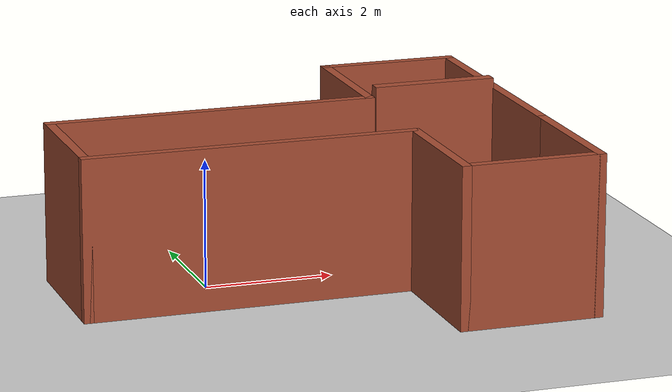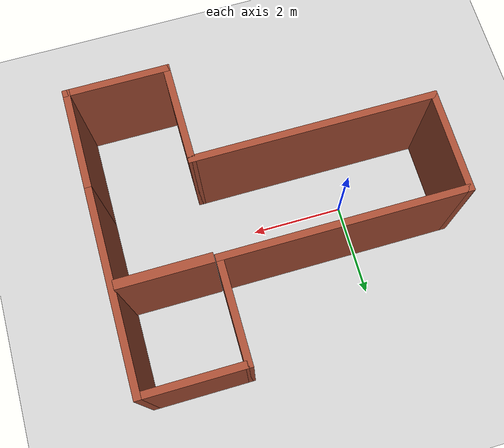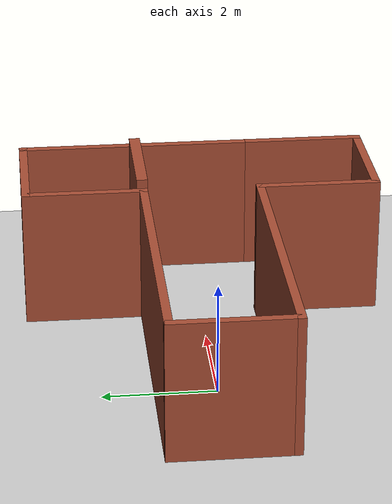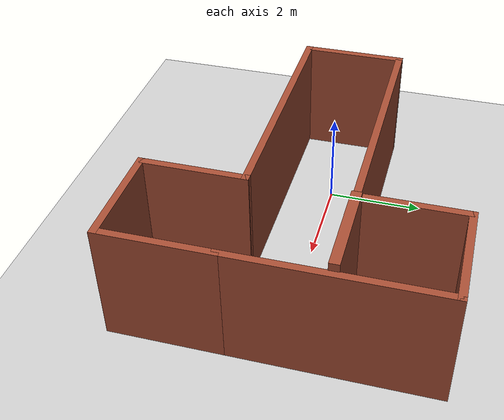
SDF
<sdf version="1.6">
 <world name="default">
  <light name="sun" type="directional">
   <pose>0 0 10 0 -0 0</pose>
   <diffuse>0.8 0.8 0.8 1</diffuse>
   <specular>0.2 0.2 0.2 1</specular>
   <attenuation>
    <range>1000</range>
    <constant>0.9</constant>
    <linear>0.01</linear>
    <quadratic>0.001</quadratic>
   </attenuation>
   <direction>0.5 0.1 -0.9</direction>
  </light>
  <model name="ground_plane">
   <static>1</static>
   <link name="link">
    <collision name="collision">
     <geometry><plane><normal>0 0 1</normal><size>100 100</size></plane></geometry>
     <surface><friction><ode><mu>100</mu><mu2>50</mu2></ode></friction></surface>
    </collision>
    <visual name="visual">
     <cast_shadows>0</cast_shadows>
     <geometry><plane><normal>0 0 1</normal><size>100 100</size></plane></geometry>
     <material>
      <script><uri>file://media/materials/scripts/gazebo.material</uri><name>Gazebo/Grey</name></script>
     </material>
    </visual>
    <velocity_decay><linear>0</linear><angular>0</angular></velocity_decay>
   </link>
  </model>
  <scene><ambient>0.4 0.4 0.4 1</ambient><background>0.7 0.7 0.7 1</background><shadows>0</shadows></scene>
  <physics name="default_physics" default="0" type="ode">
   <max_step_size>0.01</max_step_size>
   <real_time_factor>1</real_time_factor>
   <real_time_update_rate>0</real_time_update_rate>
  </physics>
  <gravity>0 0 -9.8</gravity>
  <magnetic_field>6e-06 2.3e-05 -4.2e-05</magnetic_field>
  <atmosphere type="adiabatic"/>
  <spherical_coordinates>
   <surface_model>EARTH_WGS84</surface_model>
   <latitude_deg>0</latitude_deg>
   <longitude_deg>0</longitude_deg>
   <elevation>0</elevation>
   <heading_deg>0</heading_deg>
  </spherical_coordinates>
  <model name="2room">
   <pose>1.4693 -0.02775 0 0 -0 0</pose>
   <link name="Wall_43">
    <collision name="Wall_43_Collision">
     <geometry><box><size>5.25 0.15 2.5</size></box></geometry>
     <pose>0 0 1.25 0 -0 0</pose>
    </collision>
    <visual name="Wall_43_Visual">
     <pose>0 0 1.25 0 -0 0</pose>
     <geometry><box><size>5.25 0.15 2.5</size></box></geometry>
     <material>
      <script><uri>file://media/materials/scripts/gazebo.material</uri><name>Gazebo/Bricks</name></script>
      <ambient>1 1 1 1</ambient>
     </material>
     <meta><layer>0</layer></meta>
    </visual>
    <pose>-1.05 -1.05 0 0 -0 0</pose>
   </link>
   <link name="Wall_45">
    <collision name="Wall_45_Collision">
     <geometry><box><size>2.25 0.15 2.5</size></box></geometry>
     <pose>0 0 1.25 0 -0 0</pose>
    </collision>
    <visual name="Wall_45_Visual">
     <pose>0 0 1.25 0 -0 0</pose>
     <geometry><box><size>2.25 0.15 2.5</size></box></geometry>
     <material>
      <script><uri>file://media/materials/scripts/gazebo.material</uri><name>Gazebo/Bricks</name></script>
      <ambient>1 1 1 1</ambient>
     </material>
     <meta><layer>0</layer></meta>
    </visual>
    <pose>-3.6 0 0 0 -0 1.5708</pose>
   </link>
   <link name="Wall_46">
    <collision name="Wall_46_Collision">
     <geometry><box><size>5.25 0.15 2.5</size></box></geometry>
     <pose>0 0 1.25 0 -0 0</pose>
    </collision>
    <visual name="Wall_46_Visual">
     <pose>0 0 1.25 0 -0 0</pose>
     <geometry><box><size>5.25 0.15 2.5</size></box></geometry>
     <material>
      <script><uri>file://media/materials/scripts/gazebo.material</uri><name>Gazebo/Bricks</name></script>
      <ambient>1 1 1 1</ambient>
     </material>
     <meta><layer>0</layer></meta>
    </visual>
    <pose>-1.05 1.05 0 0 -0 0</pose>
   </link>
   <link name="Wall_48">
    <collision name="Wall_48_Collision">
     <geometry><box><size>2.25 0.15 2.5</size></box></geometry>
     <pose>0 0 1.25 0 -0 0</pose>
    </collision>
    <visual name="Wall_48_Visual">
     <pose>0 0 1.25 0 -0 0</pose>
     <geometry><box><size>2.25 0.15 2.5</size></box></geometry>
     <material>
      <script><uri>file://media/materials/scripts/gazebo.material</uri><name>Gazebo/Bricks</name></script>
      <ambient>1 1 1 1</ambient>
     </material>
     <meta><layer>0</layer></meta>
    </visual>
    <pose>1.5 2.1 0 0 -0 1.5708</pose>
   </link>
   <link name="Wall_49">
    <collision name="Wall_49_Collision">
     <geometry><box><size>2.25 0.15 2.5</size></box></geometry>
     <pose>0 0 1.25 0 -0 0</pose>
    </collision>
    <visual name="Wall_49_Visual">
     <pose>0 0 1.25 0 -0 0</pose>
     <geometry><box><size>2.25 0.15 2.5</size></box></geometry>
     <material>
      <script><uri>file://media/materials/scripts/gazebo.material</uri><name>Gazebo/Bricks</name></script>
      <ambient>1 1 1 1</ambient>
     </material>
     <meta><layer>0</layer></meta>
    </visual>
    <pose>2.55 3.15 0 0 -0 0</pose>
   </link>
   <link name="Wall_50">
    <collision name="Wall_50_Collision">
     <geometry><box><size>4.25 0.15 2.5</size></box></geometry>
     <pose>0 0 1.25 0 -0 0</pose>
    </collision>
    <visual name="Wall_50_Visual">
     <pose>0 0 1.25 0 -0 0</pose>
     <geometry><box><size>4.25 0.15 2.5</size></box></geometry>
     <material>
      <script><uri>file://media/materials/scripts/gazebo.material</uri><name>Gazebo/Bricks</name></script>
      <ambient>1 1 1 1</ambient>
     </material>
     <meta><layer>0</layer></meta>
    </visual>
    <pose>3.6 1.1 0 0 0 -1.5708</pose>
   </link>
   <link name="Wall_54">
    <collision name="Wall_54_Collision">
     <geometry><box><size>2.25 0.15 2.5</size></box></geometry>
     <pose>0 0 1.25 0 -0 0</pose>
    </collision>
    <visual name="Wall_54_Visual">
     <pose>0 0 1.25 0 -0 0</pose>
     <geometry><box><size>2.25 0.15 2.5</size></box></geometry>
     <material>
      <script><uri>file://media/materials/scripts/gazebo.material</uri><name>Gazebo/Bricks</name></script>
      <ambient>1 1 1 1</ambient>
     </material>
     <meta><layer>0</layer></meta>
    </visual>
    <pose>1.5 -2.1 0 0 0 -1.5708</pose>
   </link>
   <link name="Wall_55">
    <collision name="Wall_55_Collision">
     <geometry><box><size>2.25 0.15 2.5</size></box></geometry>
     <pose>0 0 1.25 0 -0 0</pose>
    </collision>
    <visual name="Wall_55_Visual">
     <pose>0 0 1.25 0 -0 0</pose>
     <geometry><box><size>2.25 0.15 2.5</size></box></geometry>
     <material>
      <script><uri>file://media/materials/scripts/gazebo.material</uri><name>Gazebo/Bricks</name></script>
      <ambient>1 1 1 1</ambient>
     </material>
     <meta><layer>0</layer></meta>
    </visual>
    <pose>2.55 -3.15 0 0 -0 0</pose>
   </link>
   <link name="Wall_56">
    <collision name="Wall_56_Collision">
     <geometry><box><size>2.35 0.15 2.5</size></box></geometry>
     <pose>0 0 1.25 0 -0 0</pose>
    </collision>
    <visual name="Wall_56_Visual">
     <pose>0 0 1.25 0 -0 0</pose>
     <geometry><box><size>2.35 0.15 2.5</size></box></geometry>
     <material>
      <script><uri>file://media/materials/scripts/gazebo.material</uri><name>Gazebo/Bricks</name></script>
      <ambient>1 1 1 1</ambient>
     </material>
     <meta><layer>0</layer></meta>
    </visual>
    <pose>3.6 -2.05 0 0 -0 1.5708</pose>
   </link>
   <static>1</static>
  </model>
  <model name="grey_wall">
   <static>1</static>
   <link name="link">
    <pose>0 0 1.4 0 -0 0</pose>
    <collision name="collision"><geometry><box><size>1.95 0.2 2.52</size></box></geometry></collision>
    <visual name="visual">
     <cast_shadows>0</cast_shadows>
     <geometry><box><size>1.95 0.2 2.52</size></box></geometry>
     <material>
      <script><uri>file://media/materials/scripts/gazebo.material</uri><name>Gazebo/Bricks</name></script>
      <ambient>1 1 1 1</ambient>
     </material>
    </visual>
   </link>
   <pose>4.03293 1.04044 0 0 -0 0</pose>
  </model>
 </world>
</sdf>
